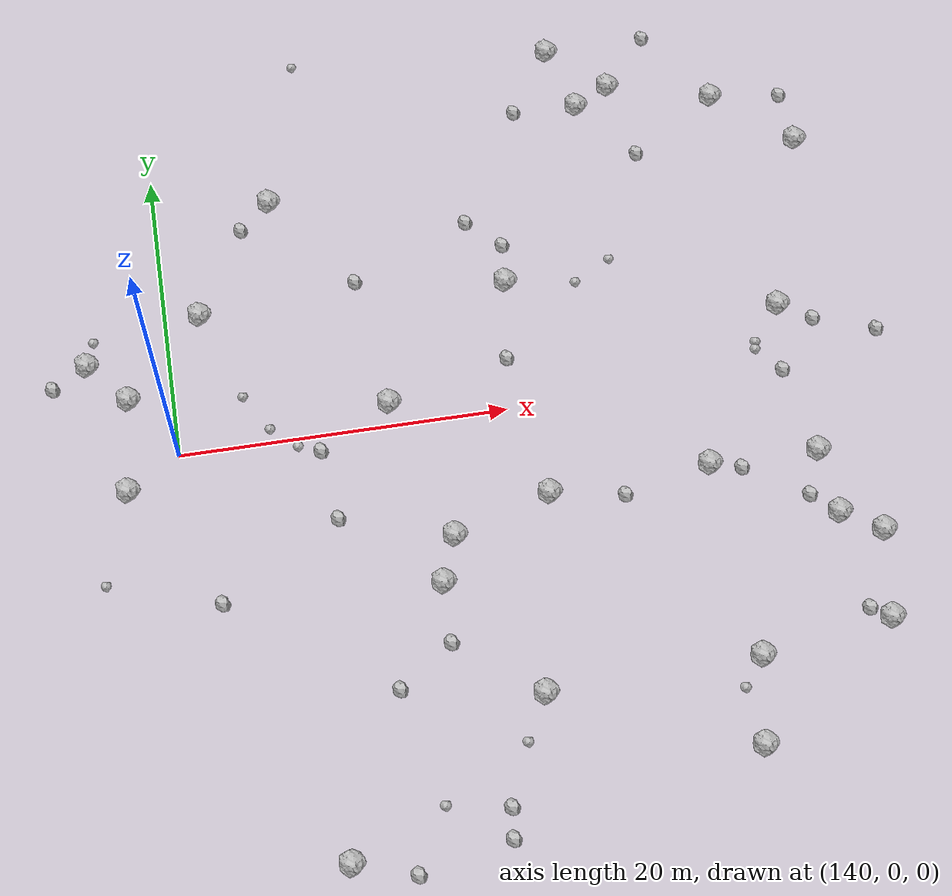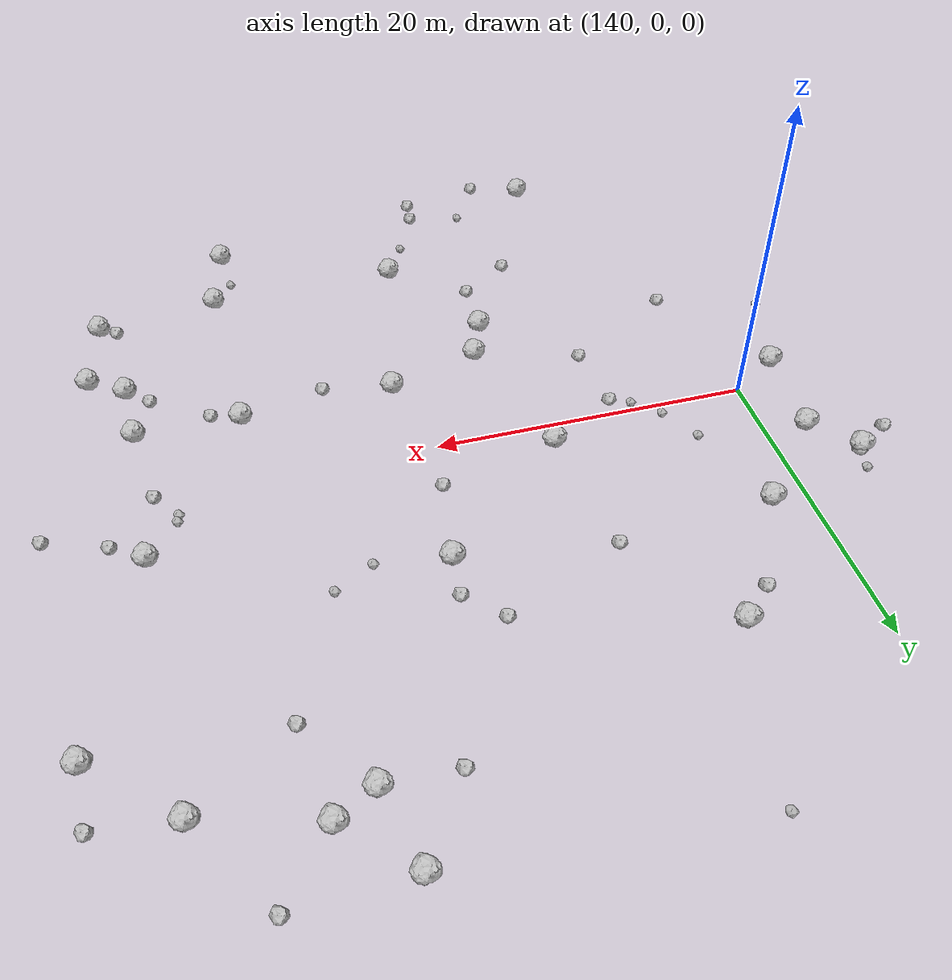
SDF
<sdf version="1.6">
 <world name="default">
  <include><uri>model://sun</uri></include>
  <model name="rock1_4_2">
   <include><uri>model://rock1</uri><pose>171.36812935639745 -5.700026811639493 0.5 0 0 0</pose></include>
  </model>
  <model name="rock1_4_3">
   <include><uri>model://rock1</uri><pose>142.2132739451337 9.432771627856305 0.5 0 0 0</pose></include>
  </model>
  <model name="rock1_4_4">
   <include><uri>model://rock1</uri><pose>161.41141215753416 8.908066456258211 0.5 0 0 0</pose></include>
  </model>
  <model name="rock1_4_5">
   <include><uri>model://rock1</uri><pose>181.9104724410126 16.748793802946892 0.5 0 0 0</pose></include>
  </model>
  <model name="rock1_4_6">
   <include><uri>model://rock1</uri><pose>136.8675370683585 -2.075498334580459 0.5 0 0 0</pose></include>
  </model>
  <model name="rock1_4_7">
   <include><uri>model://rock1</uri><pose>159.13500688959743 -18.412620091051473 0.5 0 0 0</pose></include>
  </model>
  <model name="rock1_4_8">
   <include><uri>model://rock1</uri><pose>155.5839474696028 -7.934574072152905 0.5 0 0 0</pose></include>
  </model>
  <model name="rock1_4_9">
   <include><uri>model://rock1</uri><pose>178.24862916859144 -10.019463740562866 0.5 0 0 0</pose></include>
  </model>
  <model name="rock1_4_10">
   <include><uri>model://rock1</uri><pose>161.57101309953782 -6.079678609152307 0.5 0 0 0</pose></include>
  </model>
  <model name="rock1_4_11">
   <include><uri>model://rock1</uri><pose>171.7102136464831 -18.1433245073181 0.5 0 0 0</pose></include>
  </model>
  <model name="rock1_4_12">
   <include><uri>model://rock1</uri><pose>147.4014304491156 17.186243550065704 0.5 0 0 0</pose></include>
  </model>
  <model name="rock1_4_13">
   <include><uri>model://rock1</uri><pose>154.4785471168323 -10.804606910921041 0.5 0 0 0</pose></include>
  </model>
  <model name="rock1_4_14">
   <include><uri>model://rock1</uri><pose>153.00371930891023 1.4604098822755347 0.5 0 0 0</pose></include>
  </model>
  <model name="rock1_4_15">
   <include><uri>model://rock1</uri><pose>137.3737802421294 4.110603983973462 0.5 0 0 0</pose></include>
  </model>
  <model name="rock1_4_16">
   <include><uri>model://rock1</uri><pose>170.64704142251892 22.90972242077674 0.5 0 0 0</pose></include>
  </model>
  <model name="rock1_4_17">
   <include><uri>model://rock1</uri><pose>168.30146287370158 21.649439189020597 0.5 0 0 0</pose></include>
  </model>
  <model name="rock1_4_18">
   <include><uri>model://rock1</uri><pose>170.6479519898578 -23.343226723883 0.5 0 0 0</pose></include>
  </model>
  <model name="rock1_4_19">
   <include><uri>model://rock1</uri><pose>177.22692074197965 21.01073340382449 0.5 0 0 0</pose></include>
  </model>
  <model name="rock1_4_20">
   <include><uri>model://rock1</uri><pose>177.97519678616692 -5.801424128020891 0.5 0 0 0</pose></include>
  </model>
  <model name="rock1_4_21">
   <include><uri>model://rock1</uri><pose>167.14090369841756 26.344269308920907 0.5 0 0 0</pose></include>
  </model>
  <model name="rock1_4_22">
   <include><uri>model://rock1</uri><pose>179.59882925090056 -16.998975849905076 0.5 0 0 0</pose></include>
  </model>
  <model name="rock1_4_23">
   <include><uri>model://rock1</uri><pose>135.04437333470517 6.867187820022245 0.5 0 0 0</pose></include>
  </model>
  <model name="rock1_4_24">
   <include><uri>model://rock1</uri><pose>177.92154065653878 4.5617342433153 0.5 0 0 0</pose></include>
  </model>
  <model name="rock1_4_25">
   <include><uri>model://rock1</uri><pose>180.5478715255215 -11.54188116802722 0.5 0 0 0</pose></include>
  </model>
  <model name="rock1_4_26">
   <include><uri>model://rock1</uri><pose>147.04769506060916 -26.426389327358386 0.5 0 0 0</pose></include>
  </model>
  <model name="rock2_4_0">
   <include><uri>model://rock2</uri><pose>141.66376310687085 -10.102099643103475 0.3 0 0 0</pose></include>
  </model>
  <model name="rock2_4_1">
   <include><uri>model://rock2</uri><pose>166.95514234651728 26.408080792777966 0.3 0 0 0</pose></include>
  </model>
  <model name="rock2_4_2">
   <include><uri>model://rock2</uri><pose>179.8351068523861 3.306280611496483 0.3 0 0 0</pose></include>
  </model>
  <model name="rock2_4_3">
   <include><uri>model://rock2</uri><pose>173.195855186831 -6.193367312019319 0.3 0 0 0</pose></include>
  </model>
  <model name="rock2_4_4">
   <include><uri>model://rock2</uri><pose>152.05378657389167 10.409230601158406 0.3 0 0 0</pose></include>
  </model>
  <model name="rock2_4_5">
   <include><uri>model://rock2</uri><pose>155.89688474009762 -26.41531500684758 0.3 0 0 0</pose></include>
  </model>
  <model name="rock2_4_6">
   <include><uri>model://rock2</uri><pose>176.78200262087535 -8.578415610221292 0.3 0 0 0</pose></include>
  </model>
  <model name="rock2_4_7">
   <include><uri>model://rock2</uri><pose>165.9658884434538 -6.869250596254762 0.3 0 0 0</pose></include>
  </model>
  <model name="rock2_4_8">
   <include><uri>model://rock2</uri><pose>150.49766409197534 -27.57456297806273 0.3 0 0 0</pose></include>
  </model>
  <model name="rock2_4_9">
   <include><uri>model://rock2</uri><pose>160.5706722696526 3.4559380549593897 0.3 0 0 0</pose></include>
  </model>
  <model name="rock2_4_10">
   <include><uri>model://rock2</uri><pose>181.7223596736971 20.471893063128107 0.3 0 0 0</pose></include>
  </model>
  <model name="rock2_4_11">
   <include><uri>model://rock2</uri><pose>148.48332668449856 -1.1237623390129379 0.3 0 0 0</pose></include>
  </model>
  <model name="rock2_4_12">
   <include><uri>model://rock2</uri><pose>173.69066933703516 26.58027200603081 0.3 0 0 0</pose></include>
  </model>
  <model name="rock2_4_13">
   <include><uri>model://rock2</uri><pose>132.8285347222543 5.617631994853717 0.3 0 0 0</pose></include>
  </model>
  <model name="rock2_4_14">
   <include><uri>model://rock2</uri><pose>154.3144724902225 -14.560849337613469 0.3 0 0 0</pose></include>
  </model>
  <model name="rock2_4_15">
   <include><uri>model://rock2</uri><pose>177.14308597814454 -0.00046035116169207413 0.3 0 0 0</pose></include>
  </model>
  <model name="rock2_4_16">
   <include><uri>model://rock2</uri><pose>171.46994950920302 17.336817901762835 0.3 0 0 0</pose></include>
  </model>
  <model name="rock2_4_17">
   <include><uri>model://rock2</uri><pose>156.10679194640366 -24.642406061041626 0.3 0 0 0</pose></include>
  </model>
  <model name="rock2_4_18">
   <include><uri>model://rock2</uri><pose>148.94449012211362 -5.750303789036785 0.3 0 0 0</pose></include>
  </model>
  <model name="rock2_4_19">
   <include><uri>model://rock2</uri><pose>159.61156658384664 13.733652179454197 0.3 0 0 0</pose></include>
  </model>
  <model name="rock2_4_20">
   <include><uri>model://rock2</uri><pose>151.02751187414194 -16.912076082240695 0.3 0 0 0</pose></include>
  </model>
  <model name="rock2_4_21">
   <include><uri>model://rock2</uri><pose>161.65023552079413 11.673282637799332 0.3 0 0 0</pose></include>
  </model>
  <model name="rock2_4_22">
   <include><uri>model://rock2</uri><pose>164.112976218695 21.817916397226455 0.3 0 0 0</pose></include>
  </model>
  <model name="rock2_4_23">
   <include><uri>model://rock2</uri><pose>135.2483045639276 7.172187086142479 0.3 0 0 0</pose></include>
  </model>
  <model name="rock2_4_24">
   <include><uri>model://rock2</uri><pose>145.38277111962498 15.396938389939969 0.3 0 0 0</pose></include>
  </model>
  <model name="rock2_4_25">
   <include><uri>model://rock2</uri><pose>183.54822880712334 1.9442027696139128 0.3 0 0 0</pose></include>
  </model>
  <model name="rock2_4_26">
   <include><uri>model://rock2</uri><pose>178.4687455778635 -16.21966002417987 0.3 0 0 0</pose></include>
  </model>
  <model name="rock3_4_0">
   <include><uri>model://rock3</uri><pose>135.07795123312087 -7.95789775117515 0.2 0 0 0</pose></include>
  </model>
  <model name="rock3_4_1">
   <include><uri>model://rock3</uri><pose>144.2266899234999 3.312655896220676 0.2 0 0 0</pose></include>
  </model>
  <model name="rock3_4_2">
   <include><uri>model://rock3</uri><pose>147.1617257009453 -0.6093611191608943 0.2 0 0 0</pose></include>
  </model>
  <model name="rock3_4_3">
   <include><uri>model://rock3</uri><pose>165.7419371997675 8.236691197545248 0.2 0 0 0</pose></include>
  </model>
  <model name="rock3_4_4">
   <include><uri>model://rock3</uri><pose>175.94397099375993 2.194154040599159 0.2 0 0 0</pose></include>
  </model>
  <model name="rock3_4_5">
   <include><uri>model://rock3</uri><pose>135.5040139068952 8.551050352712494 0.2 0 0 0</pose></include>
  </model>
  <model name="rock3_4_6">
   <include><uri>model://rock3</uri><pose>150.09796246784043 27.852930004586668 0.2 0 0 0</pose></include>
  </model>
  <model name="rock3_4_7">
   <include><uri>model://rock3</uri><pose>152.51367561788362 -23.99948889351386 0.2 0 0 0</pose></include>
  </model>
  <model name="rock3_4_8">
   <include><uri>model://rock3</uri><pose>175.81970410291075 1.6762986657609318 0.2 0 0 0</pose></include>
  </model>
  <model name="rock3_4_9">
   <include><uri>model://rock3</uri><pose>145.61626220430165 0.8357780531958454 0.2 0 0 0</pose></include>
  </model>
  <model name="rock3_4_10">
   <include><uri>model://rock3</uri><pose>168.1465148452521 9.59552584307292 0.2 0 0 0</pose></include>
  </model>
  <model name="rock3_4_11">
   <include><uri>model://rock3</uri><pose>170.31181215215568 -19.870196259398142 0.2 0 0 0</pose></include>
  </model>
  <model name="rock3_4_12">
   <include><uri>model://rock3</uri><pose>157.61996718987217 -21.09420927622002 0.2 0 0 0</pose></include>
  </model>
 </world>
</sdf>
